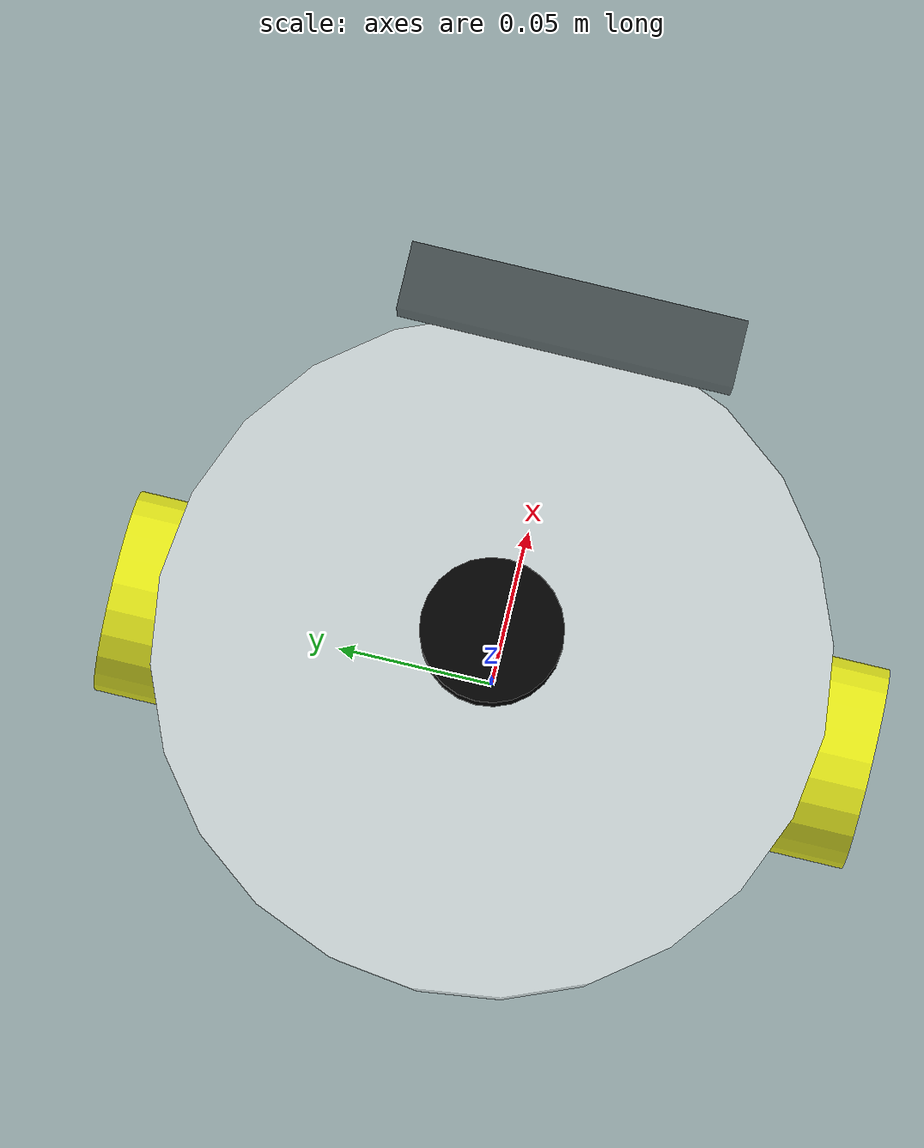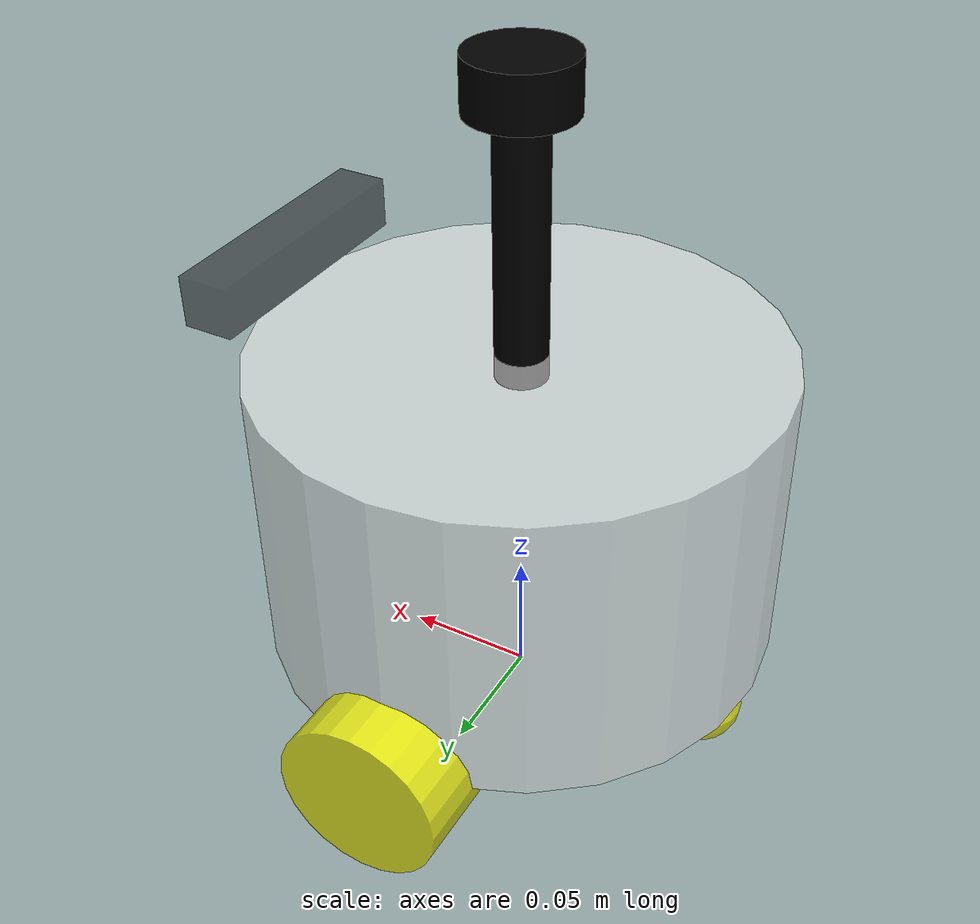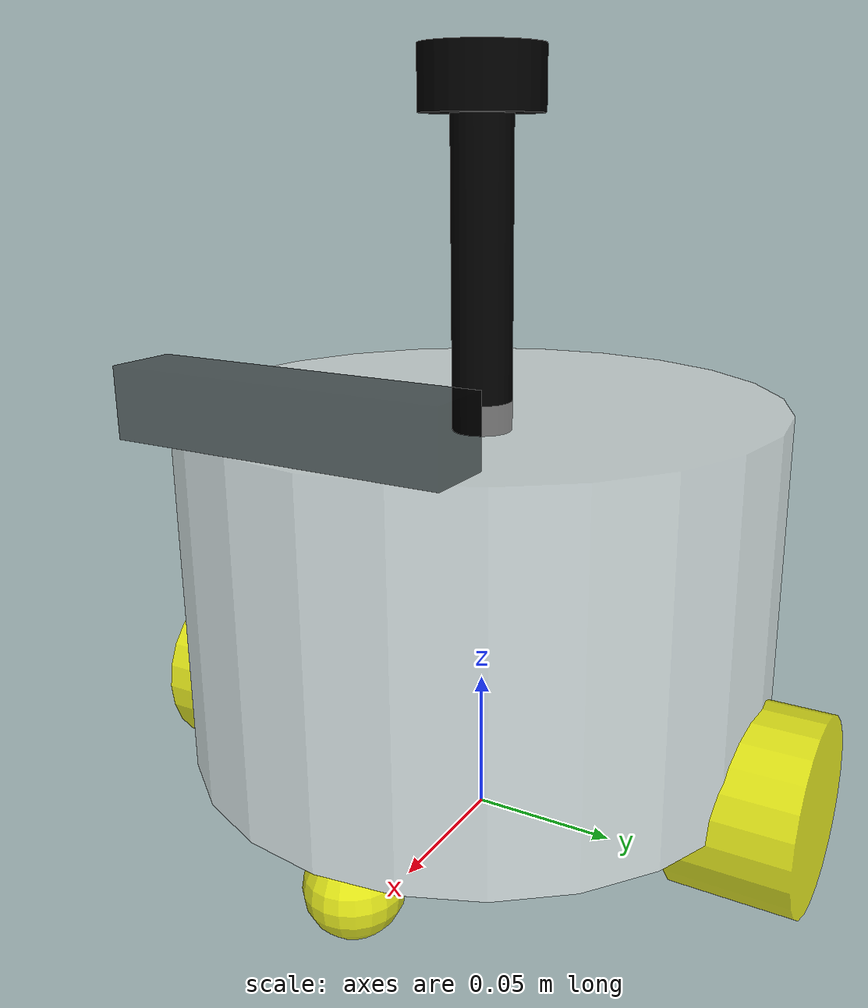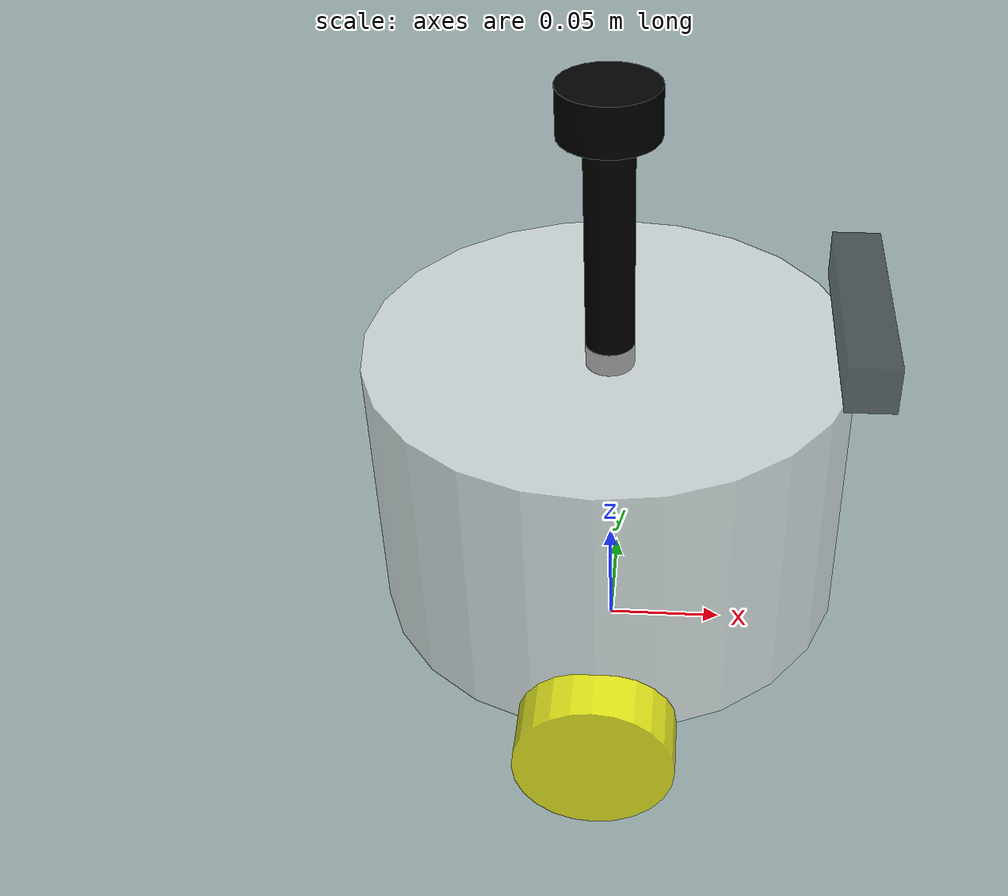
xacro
<?xml version="1.0"?>
<robot xmlns:xacro="http://www.ros.org/wiki/xacro" name="fishbot">

<!-- 引入将建好的部件 -->
<!-- 基础部分 base_link -->
<xacro:include filename="$(find fishbot_description)/urdf/fishbot/base.urdf.xacro"/>
<!-- 传感器部分 -->
<xacro:include filename="$(find fishbot_description)/urdf/fishbot/sensor/imu.urdf.xacro"/>
<xacro:include filename="$(find fishbot_description)/urdf/fishbot/sensor/camera.urdf.xacro"/>
<xacro:include filename="$(find fishbot_description)/urdf/fishbot/sensor/laser.urdf.xacro"/>
<!-- 执行器部分 -->
<xacro:include filename="$(find fishbot_description)/urdf/fishbot/actuator/wheel.urdf.xacro"/>
<xacro:include filename="$(find fishbot_description)/urdf/fishbot/actuator/caster.urdf.xacro"/>
<!-- 插件部分 -->
<xacro:include filename="$(find fishbot_description)/urdf/fishbot/plugins/gazebo_control_plugin.xacro"/>
<xacro:include filename="$(find fishbot_description)/urdf/fishbot/plugins/gazebo_sensor_plugin.xacro"/>
<xacro:include filename="$(find fishbot_description)/urdf/fishbot/fishbot.ros2_control.xacro"/>

<!-- 调用宏 -->
<xacro:base_xacro length="0.12" radius="0.10" />
<xacro:imu_xacro xyz="0.0 0.0 0.02" />
<xacro:camera_xacro xyz="0.10 0.0 0.075" />
<xacro:laser_xacro xyz="0.0 0.0 0.10" />

<xacro:wheel_xacro wheel_name="left_wheel" xyz="0 0.10 -0.06" />
<xacro:wheel_xacro wheel_name="right_wheel" xyz="0 -0.10 -0.06" />
<xacro:caster_xacro caster_name="front_caster" xyz="0.08 0.0 -0.076" />
<xacro:caster_xacro caster_name="back_caster" xyz="-0.08 0.0 -0.076" />

<!-- fishbot.ros2_control和gazebo_control_plugin都控制轮子,二者不能同时调用 -->
<xacro:gazebo_sensor_plugin />
<!-- 宏名用下划线(与fishbot.ros2_control.xacro内定义的宏名一致) -->
<xacro:fishbot_ros2_control />

</robot>

<!-- ros2 launch fishbot_description display_robot.launch.py model:=/home/emmm/Desktop/RM/ROS2/learn/chapter6/simulation_ws/src/fishbot_description/urdf/fishbot/fishbot.urdf.xacro -->

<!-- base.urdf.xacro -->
<robot xmlns:xacro="http://www.ros.org/wiki/xacro">
    <!-- 引入common_inertia.xacro宏文件 -->
    <xacro:include filename="$(find fishbot_description)/urdf/fishbot/common_inertia.xacro" />

    <xacro:macro name="base_xacro" params="length radius">

        <!-- 贴合地面,添加虚拟部件 -->
        <link name="base_footprint" />

        <!-- 机器人的身体部分 -->
        <link name="base_link">
            <!-- 部件的外观描述 -->
            <visual>
                <origin xyz="0.0 0.0 0.0" rpy="0.0 0.0 0.0"/>
                <geometry>
                    <cylinder radius="${radius}" length="${length}"/>
                </geometry>
                <material name="white">
                    <color rgba="1.0 1.0 1.0 0.5"/>
                </material>
            </visual>

            <!-- 机器人的碰撞属性 -->
            <collision>
                <origin xyz="0.0 0.0 0.0" rpy="0.0 0.0 0.0"/>
                <geometry>
                    <cylinder radius="${radius}" length="${length}"/>
                </geometry>
                <material name="white">
                    <color rgba="1.0 1.0 1.0 0.5"/>
                </material>
            </collision>

            <!-- 机器人的质量和惯性 -->
            <!-- 质量1.0kg 半径 高度 -->
            <xacro:cylinder_inertia m="1.0" r="${radius}" h="${length}" />
        </link>

        <joint name="joint_name" type="fixed">
            <!-- 距离是相对父部件的,base_link相对base_footprint在多少高度 -->
            <!-- 机器人高度/2 + 轮子高度 - 1毫米的轻微贴合-->
            <origin xyz="0.0 0.0 ${length/2.0+0.032-0.001}" rpy="0.0 0.0 0.0"/>
            <parent link="base_footprint"/>
            <child link="base_link"/>
        </joint>

    </xacro:macro>
</robot>

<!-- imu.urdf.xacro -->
<robot xmlns:xacro="http://www.ros.org/wiki/xacro">
    <xacro:include filename="$(find fishbot_description)/urdf/fishbot/common_inertia.xacro" />

    <xacro:macro name="imu_xacro" params="xyz">
        <!-- 机器人的IMU部件 -->
        <link name="imu_link">
            <!-- 外观属性 -->
            <visual>
                <origin xyz="0.0 0.0 0.0" rpy="0.0 0.0 0.0"/>
                <geometry>
                    <box size="0.02 0.02 0.02"/>
                </geometry>
                <material name="black">
                    <color rgba="0.0 0.0 0.0 0.5"/>
                </material>
            </visual>

            <!-- 碰撞属性 -->
            <collision>
                <origin xyz="0.0 0.0 0.0" rpy="0.0 0.0 0.0"/>
                <geometry>
                    <box size="0.02 0.02 0.02"/>
                </geometry>
                <material name="black">
                    <color rgba="0.0 0.0 0.0 0.5"/>
                </material>
            </collision>

            <!-- 质量和惯性属性 -->
            <xacro:box_inertia m="0.05" w="0.02" h="0.02" d="0.02" />
        </link>

        <!-- 机器人的关节 -->
        <joint name="imu_joint" type="fixed">
            <parent link="base_link"/>
            <child link="imu_link"/>
            <origin xyz="${xyz}" rpy="0.0 0.0 0.0"/>
        </joint>
    </xacro:macro>
</robot>

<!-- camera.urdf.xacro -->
<robot xmlns:xacro="http://www.ros.org/wiki/xacro">
    <xacro:include filename="$(find fishbot_description)/urdf/fishbot/common_inertia.xacro" />

    <xacro:macro name="camera_xacro" params="xyz">
        <!-- 机器人的相机部件 -->
        <link name="camera_link">
            <!-- 外观属性 -->
            <visual>
                <origin xyz="0.0 0.0 0.0" rpy="0.0 0.0 0.0"/>
                <geometry>
                    <box size="0.02 0.10 0.02"/>
                </geometry>
                <material name="black">
                    <color rgba="0.0 0.0 0.0 0.5"/>
                </material>
            </visual>

            <!-- 碰撞属性 -->
            <collision>
                <origin xyz="0.0 0.0 0.0" rpy="0.0 0.0 0.0"/>
                <geometry>
                    <box size="0.02 0.10 0.02"/>
                </geometry>
                <material name="black">
                    <color rgba="0.0 0.0 0.0 0.5"/>
                </material>
            </collision>

            <!-- 质量和惯性属性 -->
            <xacro:box_inertia m="0.1" w="0.02" h="0.10" d="0.02" />
        </link>

        <!-- 深度相机默认前方是z轴,添加虚拟部件调整方位 -->
        <link name="camera_optical_link"></link>

        <!-- 机器人的关节 -->
        <joint name="camera_joint" type="fixed">
            <parent link="base_link"/>
            <child link="camera_link"/>
            <origin xyz="${xyz}" rpy="0.0 0.0 0.0"/>
        </joint>

        <joint name="camera_optical_joint" type="fixed">
            <parent link="camera_link"/>
            <child link="camera_optical_link"/>
            <!-- rpy=(-π/2, 0, -π/2):将camera_link的X前/Y左/Z上 转为 光学系X右/Y下/Z前 -->
            <origin xyz="0 0 0" rpy="${-math.pi/2} 0.0 ${-math.pi/2}"/>
        </joint>
    </xacro:macro>
</robot>

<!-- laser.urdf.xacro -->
<robot xmlns:xacro="http://www.ros.org/wiki/xacro">
    <xacro:include filename="$(find fishbot_description)/urdf/fishbot/common_inertia.xacro" />

    <xacro:macro name="laser_xacro" params="xyz">
        <!-- 机器人的子部件 -->

        <!-- 雷达支撑杆 -->
        <link name="laser_cylinder_link">
            <!-- 外观属性 -->
            <visual>
                <origin xyz="0.0 0.0 0.0" rpy="0.0 0.0 0.0"/>
                <geometry>
                    <!-- 圆柱体 几何中心0.10/2=0.05-->
                    <cylinder radius="0.01" length="0.10"/>
                </geometry>
                <material name="black">
                    <color rgba="0.0 0.0 0.0 1.0"/>
                </material>
            </visual>

            <!-- 碰撞属性 -->
            <collision>
                <origin xyz="0.0 0.0 0.0" rpy="0.0 0.0 0.0"/>
                <geometry>
                    <cylinder radius="0.01" length="0.10"/>
                </geometry>
                <material name="black">
                    <color rgba="0.0 0.0 0.0 1.0"/>
                </material>
            </collision>

            <!-- 质量和惯性属性 -->
            <xacro:cylinder_inertia m="0.05" r="0.01" h="0.10" />
        </link>

        <!-- 机器人的雷达部件 -->
        <link name="laser_link">
            <!-- 外观属性 -->
            <visual>
                <origin xyz="0.0 0.0 0.0" rpy="0.0 0.0 0.0"/>
                <geometry>
                    <!-- 圆柱体 几何中心0.02/2=0.01-->
                    <cylinder radius="0.02" length="0.02"/>
                </geometry>
                <material name="black">
                    <color rgba="0.0 0.0 0.0 1.0"/>
                </material>
            </visual>

            <!-- 碰撞属性 -->
            <collision>
                <origin xyz="0.0 0.0 0.0" rpy="0.0 0.0 0.0"/>
                <geometry>
                    <cylinder radius="0.02" length="0.02"/>
                </geometry>
                <material name="black">
                    <color rgba="0.0 0.0 0.0 1.0"/>
                </material>
            </collision>

            <!-- 质量和惯性属性 -->
            <xacro:cylinder_inertia m="0.10" r="0.02" h="0.02" />
        </link>

        <!-- 机器人的关节 -->

        <!-- 把雷达固定在雷达支撑杆上 -->
        <joint name="laser_joint" type="fixed">
            <parent link="laser_cylinder_link"/>
            <child link="laser_link"/>
            <!-- 支撑杆高度+雷达高度 -->
            <origin xyz="0.0 0.0 0.06" rpy="0.0 0.0 0.0"/>
        </joint>

        <!-- 把雷达支撑杆固定在身体上 -->
        <joint name="laser_cylinder_joint" type="fixed">
            <parent link="base_link"/>
            <child link="laser_cylinder_link"/>
            <origin xyz="${xyz}" rpy="0.0 0.0 0.0"/>
        </joint>

        <!-- gazebo标签 -->
        <!-- reference参考部件 -->
        <gazebo reference="laser_cylinder_link">
            <material>Gazebo/Black</material>
        </gazebo>
                <gazebo reference="laser_link">
            <material>Gazebo/Black</material>
        </gazebo>

    </xacro:macro>
</robot>

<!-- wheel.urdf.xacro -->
<robot xmlns:xacro="http://www.ros.org/wiki/xacro">
    <xacro:include filename="$(find fishbot_description)/urdf/fishbot/common_inertia.xacro" />

    <xacro:macro name="wheel_xacro" params="wheel_name xyz">
        <!-- 机器人的左右轮 -->
        <link name="${wheel_name}_link">
            <!-- 外观属性 -->
            <visual>
                <!-- 通过origin的rpy改变轮子的旋转角度,让其绕x轴旋转pi/2 -->
                <origin xyz="0.0 0.0 0.0" rpy="1.57079 0.0 0.0"/>
                <geometry>
                    <cylinder radius="0.032" length="0.04"/>
                </geometry>
                <material name="yellow">
                    <color rgba="1.0 1.0 0.0 0.8"/>
                </material>
            </visual>

            <!-- 碰撞属性 -->
            <collision>
                <origin xyz="0.0 0.0 0.0" rpy="1.57079 0.0 0.0"/>
                <geometry>
                    <cylinder radius="0.032" length="0.04"/>
                </geometry>
                <material name="yellow">
                    <color rgba="1.0 1.0 0.0 0.8"/>
                </material>
            </collision>

            <!-- 质量和惯性属性 -->
            <xacro:cylinder_inertia m="0.05" r="0.032" h="0.04" />
        </link>

        <!-- 机器人的关节 -->
        <!-- continuous:旋转关节,可以绕单轴无限旋转 -->
        <joint name="${wheel_name}_joint" type="continuous">
            <parent link="base_link"/>
            <child link="${wheel_name}_link"/>
            <origin xyz="${xyz}" rpy="0.0 0.0 0.0"/>
            <!-- 绕着y轴旋转 -->
            <axis xyz="0 1 0"/>
        </joint>

        <!-- 为左右轮添加摩擦力 -->
        <gazebo reference="${wheel_name}_link">
            <!-- 切向摩擦系数 -->
            <mu1 value="20.0" />
            <!-- 法向摩擦系数 -->
            <mu2 value="20.0" />
            <!-- 刚度系数 -->
            <kp value="1000000000.0" />
            <!-- 阻尼系数 -->
            <kd value="1.0" />
        </gazebo>

    </xacro:macro>
</robot>

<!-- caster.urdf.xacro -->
<robot xmlns:xacro="http://www.ros.org/wiki/xacro">
    <xacro:include filename="$(find fishbot_description)/urdf/fishbot/common_inertia.xacro" />

    <xacro:macro name="caster_xacro" params="caster_name xyz">
        <!-- 机器人的万向轮 -->
        <link name="${caster_name}_link">
            <!-- 视觉属性 -->
            <visual>
                <!-- 球体绕哪个轴旋转都一样 -->
                <origin xyz="0 0 0" rpy="0 0 0"/>
                <geometry>
                    <!-- 球状 -->
                    <sphere radius="0.016"/>
                </geometry>
                <material name="yellow">
                    <color rgba="1.0 1.0 0.0 0.8"/>
                </material>
            </visual>

            <!-- 碰撞属性 -->
            <collision>
                <origin xyz="0 0 0" rpy="0 0 0"/>
                <geometry>
                    <sphere radius="0.016"/>
                </geometry>
                <material name="yellow">
                    <color rgba="1.0 1.0 0.0 0.8"/>
                </material>
            </collision>

            <!-- 质量和惯性属性 -->
            <xacro:sphere_inertia m="0.05" r="0.016" />
        </link>

        <!-- 机器人的关节 -->
        <joint name="${caster_name}_joint" type="fixed">
            <parent link="base_link"/>
            <child link="${caster_name}_link"/>
            <origin xyz="${xyz}" rpy="0.0 0.0 0.0"/>
        </joint>

        <!-- 为万向轮添加摩擦力,假设没有摩擦力 -->
        <gazebo reference="${caster_name}_link">
            <!-- 切向摩擦系数 -->
            <mu1 value="0.0" />
            <!-- 法向摩擦系数 -->
            <mu2 value="0.0" />
            <!-- 刚度系数 -->
            <kp value="1000000000.0" />
            <!-- 阻尼系数 -->
            <kd value="1.0" />
        </gazebo>

    </xacro:macro>
</robot>
